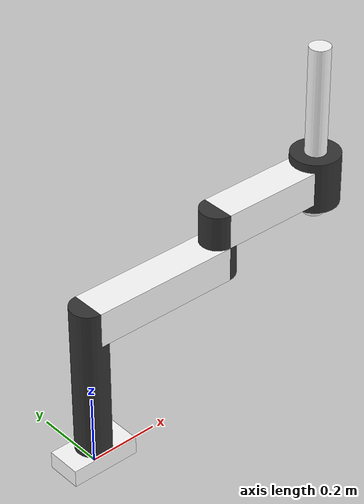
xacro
<?xml version="1.0"?>
<!-- Revolute-Revolute-Prismatic Manipulator -->
<robot name="rrp" xmlns:xacro="http://www.ros.org/wiki/xacro">

  <!-- Constants for robot dimensions -->
  <xacro:property name="PI" value="3.1415926535897931"/>
  <xacro:property name="length0" value="0.05" /> <!-- Base -->
  <xacro:property name="length1" value="0.45" /> <!-- Link 0 -->
  <xacro:property name="length2" value="0.425" /> <!-- Link 1 -->
  <xacro:property name="length3" value="0.345" /> <!-- Link 2 -->
  <xacro:property name="length4" value="0.11" /> <!-- Link 3 -->

  <!-- Import all Gazebo-customization elements, including Gazebo colors -->
  <xacro:include filename="$(find rrp_description)/urdf/rrp.gazebo" />
  <!-- Import Rviz colors -->
  <xacro:include filename="$(find rrp_description)/urdf/materials.xacro" />

  <!-- Used for fixing robot to Gazebo 'base_link' -->
  <link name="world"/>

  <!-- Base Link -->
  <link name = "base">
    <visual>
      <geometry>
        <box size = "0.2 0.1 ${length0}"/>
      </geometry>
      <material name = "white"/>
      <origin xyz = "0 0 0.025"/>
    </visual>
    <inertial>
      <mass value="1" />
      <origin xyz="0 0 0.025" rpy="0 0 0" />
      <inertia ixx="1" ixy="0" ixz="0" iyy="1" iyz="0" izz="1" />
    </inertial>
    <collision>
      <geometry>
        <box size = "0.2 0.1 ${length0}"/>
      </geometry>
      <material name = "white"/>
      <origin xyz = "0 0 0.025"/>
    </collision>
  </link>

  <joint name="fixed" type="fixed">
    <parent link="world"/>
    <child link="base"/>
  </joint>

  <link name = "revolute1">
    <visual>
      <geometry>
        <cylinder length = "${length1}" radius = "0.05"/>
      </geometry>
      <material name = "grey"/>
      <origin xyz = "0 0 ${length1/2}"/>
    </visual>
    <inertial>
      <mass value="0.5" />
      <origin xyz="0 0 0.05" rpy="0 0 0" />
      <inertia ixx="0.5" ixy="0" ixz="0" iyy="0.5" iyz="0" izz="0.5" />
    </inertial>
    <collision>
      <geometry>
        <cylinder length = "${length1}" radius = "0.05"/>
      </geometry>
      <material name = "grey"/>
      <origin xyz = "0 0 ${length1/2}"/>
    </collision>
  </link>

  <joint name = "joint1" type="continuous">
    <parent link = "base"/>
    <child link = "revolute1"/>
    <origin xyz = "0 0 0.05"/>
    <axis xyz = "0 0 1"/>
    <dynamics damping="0.5" friction="0.1" />
  </joint>

  <link name = "link1">
    <visual>
      <geometry>
        <box size = "0.1 0.1 ${length2}"/>
      </geometry>
      <material name = "white"/>
      <origin rpy = "0 1.571 0" xyz = "${length2/2} 0 0"/>
    </visual>
    <inertial>
      <mass value="0.5" />
      <origin xyz="${length2/2} 0 0" rpy="0 0 0" />
      <inertia ixx="0.5" ixy="0" ixz="0" iyy="0.5" iyz="0" izz="0.5" />
    </inertial>
    <collision>
      <geometry>
        <box size = "0.1 0.1 ${length2}"/>
      </geometry>
      <material name = "white"/>
      <origin rpy = "0 1.571 0" xyz = "${length2/2} 0 0"/>
    </collision>
  </link>

  <joint name = "revolute1Tolink1" type="fixed">
    <parent link = "revolute1"/>
    <child link = "link1"/>
    <origin xyz = "0 0 0.4"/>
  </joint>

  <link name = "revolute2">
    <visual>
      <geometry>
        <cylinder length = "0.2" radius = "0.05"/>
      </geometry>
      <material name = "grey"/>
      <origin rpy = "0 0 0" xyz = "0 0 0"/>
    </visual>
    <inertial>
      <mass value="0.5" />
      <origin xyz="0 0 0" rpy="0 0 0" />
      <inertia ixx="0.5" ixy="0" ixz="0" iyy="0.5" iyz="0" izz="0.5" />
    </inertial>
    <collision>
      <geometry>
        <cylinder length = "0.2" radius = "0.05"/>
      </geometry>
      <material name = "grey"/>
      <origin rpy = "0 0 0" xyz = "0 0 0"/>
    </collision>
  </link>

  <joint name = "joint2" type="continuous">
    <parent link = "link1"/>
    <child link = "revolute2"/>
    <origin xyz = "${length2} 0 0.05"/>
    <axis xyz = "0 0 1"/>
    <dynamics damping="0.5" friction="0.1" />
  </joint>

  <link name = "link2">
    <visual>
      <geometry>
        <box size = "0.1 0.1 ${length3}"/>
      </geometry>
      <material name = "white"/>
      <origin rpy = "0 1.571 0" xyz = "${length3/2} 0 0"/>
    </visual>
    <inertial>
      <mass value="0.5" />
      <origin xyz="${length3/2} 0 0" rpy="0 0 0" />
      <inertia ixx="0.5" ixy="0" ixz="0" iyy="0.5" iyz="0" izz="0.5" />
    </inertial>
    <collision>
      <geometry>
        <box size = "0.1 0.1 ${length3}"/>
      </geometry>
      <material name = "white"/>
      <origin rpy = "0 1.571 0" xyz = "${length3/2} 0 0"/>
    </collision>
  </link>

  <joint name = "revolute2Tolink2" type="fixed">
    <parent link = "revolute2"/>
    <child link = "link2"/>
    <origin xyz = "0 0 0.05"/>
  </joint>

  <link name = "prismatic3">
    <visual>
      <geometry>
        <cylinder length = "0.15" radius = "0.07"/>
      </geometry>
      <material name = "grey"/>
      <origin xyz = "0 0 0"/>
    </visual>
    <inertial>
      <mass value="0.5" />
      <origin xyz="0 0 0" rpy="0 0 0" />
      <inertia ixx="0.5" ixy="0" ixz="0" iyy="0.5" iyz="0" izz="0.5" />
    </inertial>
    <collision>
      <geometry>
        <cylinder length = "0.15" radius = "0.07"/>
      </geometry>
      <material name = "grey"/>
      <origin xyz = "0 0 0"/>
    </collision>
  </link>

  <joint name = "link2Toprismatic3" type="fixed">
    <parent link = "link2"/>
    <child link = "prismatic3"/>
    <origin rpy = "3.14 0 0" xyz = "${length3} 0 0"/>
  </joint>

  <link name = "link3">
    <visual>
      <geometry>
        <cylinder length = "0.5" radius = "0.03"/>
      </geometry>
      <material name = "white"/>
      <origin xyz = "0 0 -0.25"/>
    </visual>
    <inertial>
      <mass value="0.1" />
      <origin xyz="0 0 -0.25" rpy="0 0 0" />
      <inertia ixx="0.2" ixy="0" ixz="0" iyy="0.2" iyz="0" izz="0.2" />
    </inertial>
    <collision>
      <geometry>
        <cylinder length = "0.5" radius = "0.03"/>
      </geometry>
      <material name = "white"/>
      <origin xyz = "0 0 -0.25"/>
    </collision>
  </link>

  <joint name = "joint3" type="prismatic">
    <parent link = "prismatic3"/>
    <child link = "link3"/>
    <origin xyz = "0 0 ${length4}"/>
    <limit effort="1000" lower="-0.00001" upper="0.3" velocity="0.1"/>
    <axis xyz = "0 0 1"/>
    <dynamics damping="0.2" friction="2" />
  </joint>

  <transmission name="tran1">
    <type>transmission_interface/SimpleTransmission</type>
    <joint name="joint1">
      <hardwareInterface>hardware_interface/EffortJointInterface</hardwareInterface>
    </joint>
    <actuator name="motor1">
      <hardwareInterface>hardware_interface/EffortJointInterface</hardwareInterface>
      <mechanicalReduction>1</mechanicalReduction>
    </actuator>
  </transmission>

  <transmission name="tran2">
    <type>transmission_interface/SimpleTransmission</type>
    <joint name="joint2">
      <hardwareInterface>hardware_interface/EffortJointInterface</hardwareInterface>
    </joint>
    <actuator name="motor2">
      <hardwareInterface>hardware_interface/EffortJointInterface</hardwareInterface>
      <mechanicalReduction>1</mechanicalReduction>
    </actuator>
  </transmission>

  <transmission name="tran3">
    <type>transmission_interface/SimpleTransmission</type>
    <joint name="joint3">
      <hardwareInterface>hardware_interface/EffortJointInterface</hardwareInterface>
    </joint>
    <actuator name="motor3">
      <hardwareInterface>hardware_interface/EffortJointInterface</hardwareInterface>
      <mechanicalReduction>1</mechanicalReduction>
    </actuator>
  </transmission>

</robot>

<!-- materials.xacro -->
<robot>

  <material name="black">
    <color rgba="0.0 0.0 0.0 1.0"/>
  </material>

  <material name="grey">
    <color rgba="0.2 0.2 0.2 1.0"/>
  </material>

  <material name="white">
    <color rgba="1.0 1.0 1.0 1.0"/>
  </material>

</robot>
